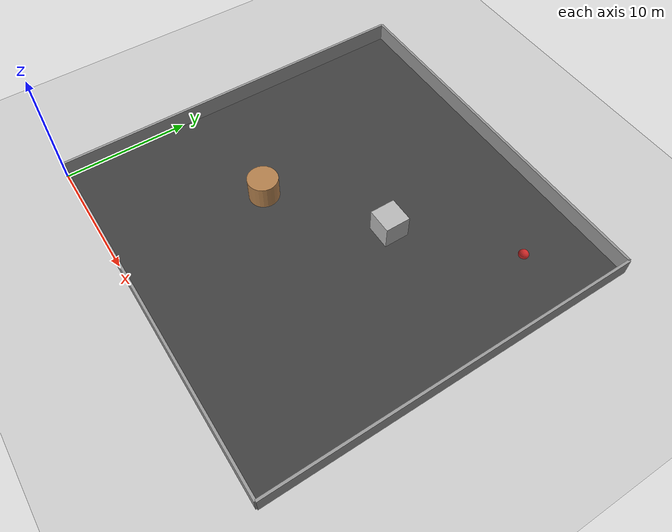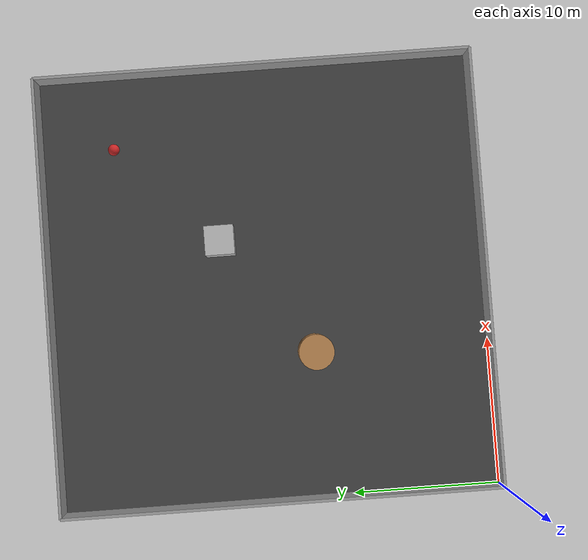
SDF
<?xml version="1.0" ?>
<sdf version="1.6">
  <world name="arena1_world">
    <include>
      <uri>model://ground_plane</uri>
    </include>
    <include>
      <uri>model://sun</uri>
    </include>

    <model name="custom_arena_floor">
      <static>true</static>
      <pose>15.0 15.0 0.005 0 0 0</pose>
      <link name="link">
        <visual name="visual">
          <geometry>
            <box>
              <size>30.0 30.0 0.001</size>
            </box>
          </geometry>
          <material>
            <ambient>0.25 0.25 0.25 1</ambient>
            <diffuse>0.25 0.25 0.25 1</diffuse>
            <specular>0.1 0.1 0.1 1</specular>
          </material>
        </visual>
      </link>
    </model>

    <model name="wall_south">
      <static>true</static>
      <pose>15.0 0.0 0.75 0 0 0</pose>
      <link name="link">
        <collision name="collision">
          <geometry>
            <box>
              <size>30.0 0.2 1.5</size>
            </box>
          </geometry>
        </collision>
        <visual name="visual">
          <geometry>
            <box>
              <size>30.0 0.2 1.5</size>
            </box>
          </geometry>
          <material>
            <script>
              <uri>file://media/materials/scripts/gazebo.material</uri>
              <name>Gazebo/Grey</name>
            </script>
          </material>
        </visual>
      </link>
    </model>

    <model name="wall_north">
      <static>true</static>
      <pose>15.0 30.0 0.75 0 0 0</pose>
      <link name="link">
        <collision name="collision">
          <geometry>
            <box>
              <size>30.0 0.2 1.5</size>
            </box>
          </geometry>
        </collision>
        <visual name="visual">
          <geometry>
            <box>
              <size>30.0 0.2 1.5</size>
            </box>
          </geometry>
          <material>
            <script>
              <uri>file://media/materials/scripts/gazebo.material</uri>
              <name>Gazebo/Grey</name>
            </script>
          </material>
        </visual>
      </link>
    </model>

    <model name="wall_west">
      <static>true</static>
      <pose>0.0 15.0 0.75 0 0 1.5708</pose>
      <link name="link">
        <collision name="collision">
          <geometry>
            <box>
              <size>30.0 0.2 1.5</size>
            </box>
          </geometry>
        </collision>
        <visual name="visual">
          <geometry>
            <box>
              <size>30.0 0.2 1.5</size>
            </box>
          </geometry>
          <material>
            <script>
              <uri>file://media/materials/scripts/gazebo.material</uri>
              <name>Gazebo/Grey</name>
            </script>
          </material>
        </visual>
      </link>
    </model>

    <model name="wall_east">
      <static>true</static>
      <pose>30.0 15.0 0.75 0 0 1.5708</pose>
      <link name="link">
        <collision name="collision">
          <geometry>
            <box>
              <size>30.0 0.2 1.5</size>
            </box>
          </geometry>
        </collision>
        <visual name="visual">
          <geometry>
            <box>
              <size>30.0 0.2 1.5</size>
            </box>
          </geometry>
          <material>
            <script>
              <uri>file://media/materials/scripts/gazebo.material</uri>
              <name>Gazebo/Grey</name>
            </script>
          </material>
        </visual>
      </link>
    </model>

    <model name="center_pillar_a">
      <static>true</static>
      <pose>10.0 12.0 1.0 0 0 0</pose>
      <link name="link">
        <collision name="collision">
          <geometry>
            <cylinder>
              <radius>1.2</radius>
              <length>2.0</length>
            </cylinder>
          </geometry>
        </collision>
        <visual name="visual">
          <geometry>
            <cylinder>
              <radius>1.2</radius>
              <length>2.0</length>
            </cylinder>
          </geometry>
          <material>
            <script>
              <uri>file://media/materials/scripts/gazebo.material</uri>
              <name>Gazebo/Wood</name>
            </script>
          </material>
        </visual>
      </link>
    </model>

    <model name="center_pillar_b">
      <static>true</static>
      <pose>18.0 18.0 1.0 0 0 0</pose>
      <link name="link">
        <collision name="collision">
          <geometry>
            <box>
              <size>2.0 2.0 2.0</size>
            </box>
          </geometry>
        </collision>
        <visual name="visual">
          <geometry>
            <box>
              <size>2.0 2.0 2.0</size>
            </box>
          </geometry>
          <material>
            <script>
              <uri>file://media/materials/scripts/gazebo.material</uri>
              <name>Gazebo/Brick</name>
            </script>
          </material>
        </visual>
      </link>
    </model>

    <model name="goal_marker">
      <static>true</static>
      <pose>25.0 25.0 0.01 0 0 0</pose>
      <link name="link">
        <visual name="visual">
          <geometry>
            <sphere>
              <radius>0.4</radius>
            </sphere>
          </geometry>
          <material>
            <script>
              <uri>file://media/materials/scripts/gazebo.material</uri>
              <name>Gazebo/Red</name>
            </script>
          </material>
        </visual>
      </link>
    </model>
  </world>
</sdf>
